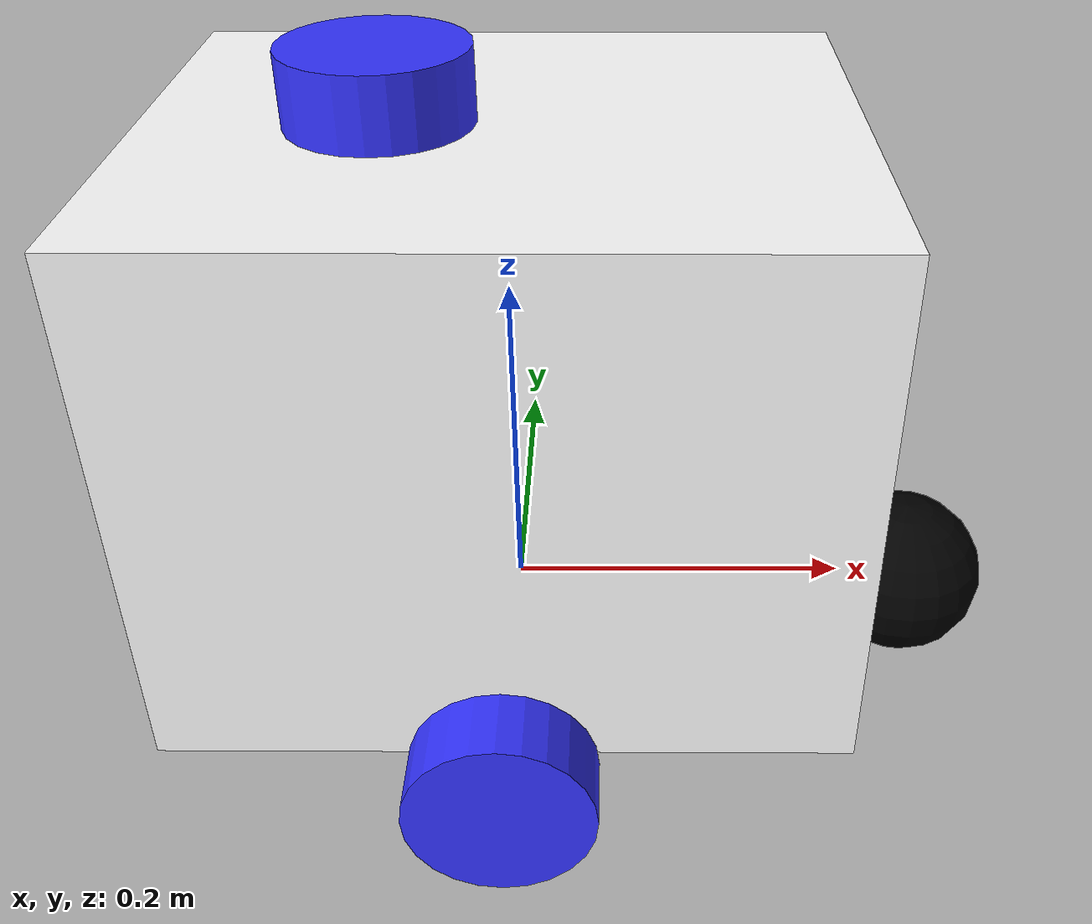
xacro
<?xml version="1.0"?>
<robot xmlns:xacro="http://www.ros.org/wiki/xacro" >

  <material name="white"><color rgba="1 1 1 1"/></material>
  <material name="blue"><color rgba="0.2 0.2 1 1"/></material>
  <material name="black"><color rgba="0 0 0 1"/></material>

  <link name="base_link">
    <visual>
      <origin xyz="0 0 0.1475"/>
      <geometry>
        <box size="0.375 0.31 0.295"/>
      </geometry>
      <material name="white"/>
    </visual>
  </link>

  <joint name="laser_joint" type="fixed">
    <parent link="base_link"/>
    <child link="laser_frame"/>
    <origin xyz="-0.0625 0 0.315" rpy="0 0 0"/>
  </joint>

  <link name="laser_frame">
    <visual>
      <geometry>
        <cylinder radius="0.05" length="0.04"/>
      </geometry>
      <origin xyz="0 0 0" rpy="0 0 0"/>
      <material name="blue"/>
    </visual>
  </link>

  <joint name="left_wheel_joint" type="continuous">
    <parent link="base_link"/>
    <child link="left_wheel"/>
    <origin xyz="0 0.183 0" rpy="-1.5708 0 0" />
    <axis xyz="0 0 1"/>
  </joint>

  <link name="left_wheel">
    <visual>
      <geometry>
        <cylinder radius="0.0508" length="0.04"/>
      </geometry>
      <material name="blue"/>
    </visual>
  </link>

  <joint name="right_wheel_joint" type="continuous">
    <parent link="base_link"/>
    <child link="right_wheel"/>
    <origin xyz="0 -0.183 0" rpy="1.5708 0 0" />
    <axis xyz="0 0 -1"/>
  </joint>

  <link name="right_wheel">
    <visual>
      <geometry>
        <cylinder radius="0.0508" length="0.04"/>
      </geometry>
      <material name="blue"/>
    </visual>
  </link>

  <joint name="caster_wheel_joint" type="fixed">
    <parent link="base_link"/>
    <child link="caster_wheel"/>
    <origin xyz="0.24 0 0"/>
  </joint>

  <link name="caster_wheel">
    <visual>
      <geometry>
        <sphere radius="0.05"/>
      </geometry>
      <material name="black"/>
    </visual>
  </link>

</robot>
